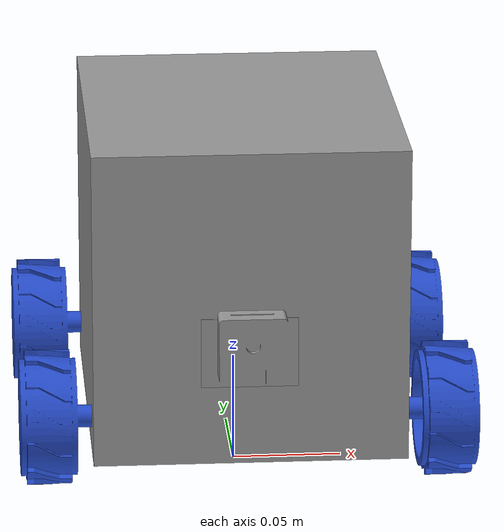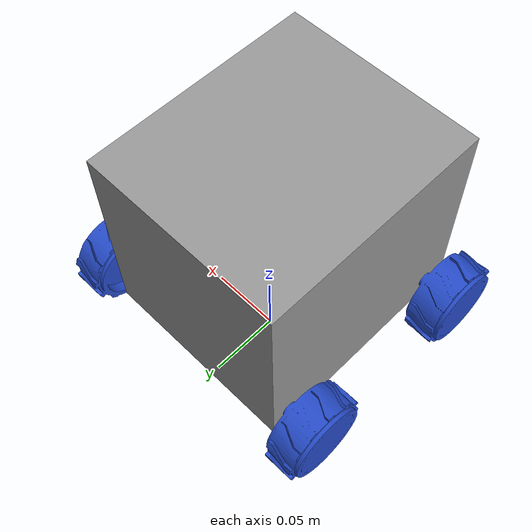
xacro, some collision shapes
<?xml version="1.0"?>
<robot xmlns:xacro="http://www.ros.org/wiki/xacro">

    <link name="base_footprint" />

    <link name="base_link">
        <visual>
            <geometry>
                <mesh filename="package://gr2_description/meshes/GR2_Main_Body.dae" />
            </geometry>
            <origin xyz="0.08 0 0" rpy="0 0 0" />
            <material name="grey" />
        </visual>
        <collision>
            <geometry>
                <box size="0.140 0.160 0.143" />
            </geometry>
            <origin xyz="0.0015 -0.015 0.055" rpy="0 0 0" />
        </collision>
        <inertial>
            <mass value="0.715" />
            <origin xyz="0 0 0" rpy="0 0 0" />
            <inertia ixx="0.003" ixy="6.408e-5" ixz="-6.085e-5"
                    iyy="0.002" iyz="-1.701e-6"
                    izz="0.003" />
        </inertial>
    </link>

    <xacro:macro name="wheel_link" params="prefix" >
        <link name="${prefix}_wheel_link">
            <visual>
                <geometry>
                    <mesh filename="package://gr2_description/meshes/GR2_Wheel_Assembly.dae" />
                </geometry>
                <origin xyz="0 0 0" rpy="0 0 0" />
                <material name="blue" />
            </visual>
            <collision>
                <geometry>
                    <cylinder radius="0.031" length="0.047" />
                </geometry>
                <origin xyz="0 0 0" rpy="1.57 0 0" />
            </collision>
            <inertial>
                <mass value="0.062" />
                <origin xyz="0 0 0" rpy="0 0 0" />
                <inertia ixx="2.527e-5" ixy="4.039e-11" ixz="2.637e-12"
                        iyy="1.528e-5" iyz="9.797e-11"
                        izz="1.528e-5" />
            </inertial>
        </link>
    </xacro:macro>

    <xacro:wheel_link prefix="left_front" />
    <xacro:wheel_link prefix="right_front" />
    <xacro:wheel_link prefix="left_back" />
    <xacro:wheel_link prefix="right_back" />

    <link name="camera_link">
        <visual>
            <geometry>
                <mesh filename="package://gr2_description/meshes/GR2_Cam_Mount.dae" />
            </geometry>
            <origin xyz="0 0 0" rpy="0 0 1.57" />
            <material name="grey" />
        </visual>
        <collision>
            <geometry>
                <box size="0.044 0.057 0.04" />
            </geometry>
            <origin xyz="0.0105 0.0125 0.0115" rpy="0 0 0" />
        </collision>
        <inertial>
            <mass value="0.014" />
            <origin xyz="0 0 0" rpy="0 0 0" />
            <inertia ixx="3.888e-6" ixy="-6.953e-9" ixz="8.281e-9"
                    iyy="3.246e-6" iyz="1.170e-6"
                    izz="3.570e-6" />
        </inertial>
    </link>

    <joint name="base_joint" type="fixed" >
        <parent link="base_footprint" />
        <child link="base_link" />
        <origin xyz="0 0 0.05" rpy="0 0 0" />
    </joint>

    <xacro:macro name="wheel_joint" params="prefix x y yw ay" >
        <joint name="base_${prefix}_wheel_joint" type="continuous" >
            <parent link="base_link" />
            <child link="${prefix}_wheel_link" />
            <origin xyz="${x} ${y} 0.0" rpy="0 0 ${yw}" />
            <axis xyz="0 ${ay} 0" />
        </joint>
    </xacro:macro>

    <xacro:wheel_joint prefix="left_front" x="0.09" y="-0.075" yw="1.57" ay="-1" />
    <xacro:wheel_joint prefix="right_front" x="-0.088" y="-0.075" yw="-1.57" ay="1" />
    <xacro:wheel_joint prefix="left_back" x="0.088" y="0.052" yw="1.57" ay="-1" />
    <xacro:wheel_joint prefix="right_back" x="-0.088" y="0.052" yw="-1.57" ay="1" />

    <joint name="base_camera_joint" type="fixed">
        <parent link="base_link"/>
        <child link="camera_link"/>
        <origin xyz="-0.01 -0.1045 0.028" rpy="0 0 4.71" />
    </joint>
</robot>
